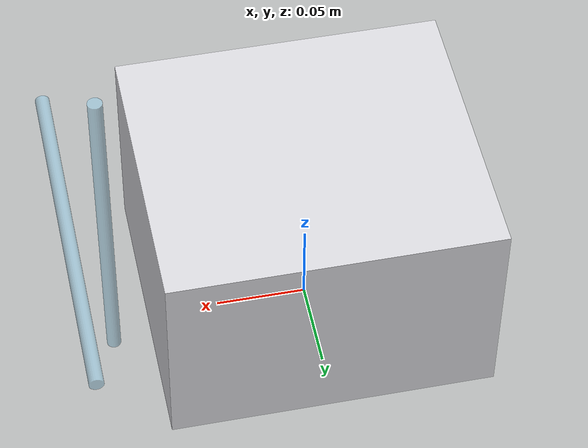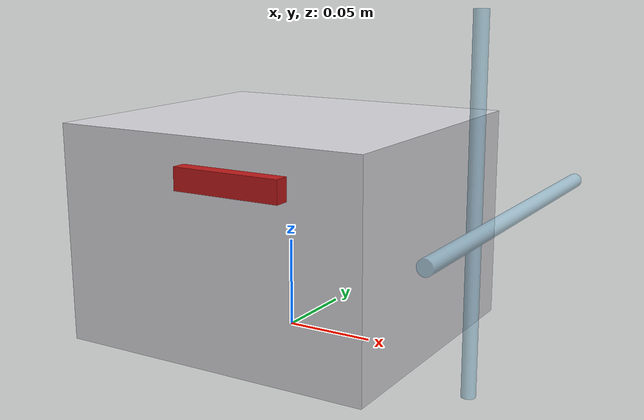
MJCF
<?xml version="1.0" encoding="utf-8"?>
<mujoco model="real_lab_polimi_flow_reactor">
  <compiler angle="radian" autolimits="true"/>
  <default>
    <default class="body"><geom contype="1" conaffinity="1"/></default>
  </default>
  <worldbody>
    <body name="base">
      <geom type="box" size="0.09 0.08 0.06" pos="0 0 0.06" rgba="0.85 0.85 0.87 1" class="body"/>
      <geom type="cylinder" size="0.004 0.1" pos="0.11 0 0.08" rgba="0.6 0.8 0.9 0.6" class="body"/>
      <geom type="cylinder" size="0.004 0.1" pos="0.13 0 0.08" rgba="0.6 0.8 0.9 0.6" class="body" quat="0.707 0.707 0 0"/>
      <body name="valve_lever" pos="0.0 -0.08 0.1">
        <joint name="valve_lever_joint" type="hinge" axis="0 1 0" range="-0.6 0.6" damping="0.4" frictionloss="0.15"/>
  <geom type="box" size="0.03 0.008 0.006" pos="0.02 0 0" rgba="0.75 0.1 0.1 1" class="body"/>
      </body>
    </body>
  </worldbody>
</mujoco>
